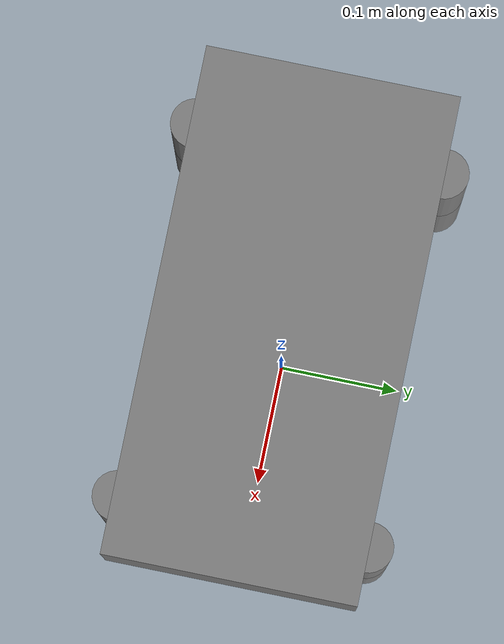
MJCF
<?xml version="1.0" ?>
<mujoco model="simple_quadruped">
  <compiler angle="radian" coordinate="local"/>
  <option gravity="0 0 -9.81"/>

  <!-- make the body free to translate & rotate -->
  <worldbody>
    <body name="base" pos="0 0 0.3">
      <freejoint name="root_joint"/>

      <!-- Main torso geom -->
      <geom name="body_geom" type="box" size="0.2 0.1 0.05" pos="0 0 0"
            mass="5.0"/>

      <!-- FRONT LEFT LEG -->
      <body name="hip_fl" pos="0.15 0.1 -0.025">
        <joint name="knee_joint_fl" type="hinge" axis="0 1 0" pos="0 0 0"
               range="-1.57 1.57" damping="1"/>
        <geom name="upper_leg_fl" type="cylinder" size="0.02 0.05" pos="0 0 -0.05"/>

        <body name="ankle_fl" pos="0 0 -0.1">
          <joint name="ankle_joint_fl" type="hinge" axis="0 1 0" pos="0 0 0"
                 range="-1.57 1.57" damping="1"/>
          <geom name="lower_leg_fl" type="cylinder" size="0.02 0.05" pos="0 0 -0.05"/>
        </body>
      </body>

      <!-- FRONT RIGHT LEG -->
      <body name="hip_fr" pos="0.15 -0.1 -0.025">
        <joint name="knee_joint_fr" type="hinge" axis="0 1 0" pos="0 0 0"
               range="-1.57 1.57" damping="1"/>
        <geom name="upper_leg_fr" type="cylinder" size="0.02 0.05" pos="0 0 -0.05"/>

        <body name="ankle_fr" pos="0 0 -0.1">
          <joint name="ankle_joint_fr" type="hinge" axis="0 1 0" pos="0 0 0"
                 range="-1.57 1.57" damping="1"/>
          <geom name="lower_leg_fr" type="cylinder" size="0.02 0.05" pos="0 0 -0.05"/>
        </body>
      </body>

      <!-- REAR LEFT LEG -->
      <body name="hip_rl" pos="-0.15 0.1 -0.025">
        <joint name="knee_joint_rl" type="hinge" axis="0 1 0" pos="0 0 0"
               range="-1.57 1.57" damping="1"/>
        <geom name="upper_leg_rl" type="cylinder" size="0.02 0.05" pos="0 0 -0.05"/>

        <body name="ankle_rl" pos="0 0 -0.1">
          <joint name="ankle_joint_rl" type="hinge" axis="0 1 0" pos="0 0 0"
                 range="-1.57 1.57" damping="1"/>
          <geom name="lower_leg_rl" type="cylinder" size="0.02 0.05" pos="0 0 -0.05"/>
        </body>
      </body>

      <!-- REAR RIGHT LEG -->
      <body name="hip_rr" pos="-0.15 -0.1 -0.025">
        <joint name="knee_joint_rr" type="hinge" axis="0 1 0" pos="0 0 0"
               range="-1.57 1.57" damping="1"/>
        <geom name="upper_leg_rr" type="cylinder" size="0.02 0.05" pos="0 0 -0.05"/>

        <body name="ankle_rr" pos="0 0 -0.1">
          <joint name="ankle_joint_rr" type="hinge" axis="0 1 0" pos="0 0 0"
                 range="-1.57 1.57" damping="1"/>
          <geom name="lower_leg_rr" type="cylinder" size="0.02 0.05" pos="0 0 -0.05"/>
        </body>
      </body>

    </body>
  </worldbody>

  <asset>
    <!-- optional checkerboard texture -->
    <texture name="checker" type="2d" builtin="checker"
             rgb1="0.2 0.3 0.4" rgb2="1 1 1"
             width="512" height="512"/>
    <material name="ground" texture="checker" texrepeat="10 10" reflectance="0.1"/>
  </asset>

  <worldbody>
    <!-- add this geom for your floor -->
    <geom name="floor" type="plane" pos="0 0 0" size="10 10 0.1"
          material="ground"/>

    <!-- your existing quadruped (root body) goes here -->
    <body name="torso" pos="0 0 0.5">
    </body>
  </worldbody>

  <!-- actuators -->
  <actuator>
    <motor name="motor_knee_fl"  joint="knee_joint_fl"  gear="1"/>
    <motor name="motor_ankle_fl" joint="ankle_joint_fl" gear="1"/>
    <motor name="motor_knee_fr"  joint="knee_joint_fr"  gear="1"/>
    <motor name="motor_ankle_fr" joint="ankle_joint_fr" gear="1"/>
    <motor name="motor_knee_rl"  joint="knee_joint_rl"  gear="1"/>
    <motor name="motor_ankle_rl" joint="ankle_joint_rl" gear="1"/>
    <motor name="motor_knee_rr"  joint="knee_joint_rr"  gear="1"/>
    <motor name="motor_ankle_rr" joint="ankle_joint_rr" gear="1"/>
  </actuator>
</mujoco>
